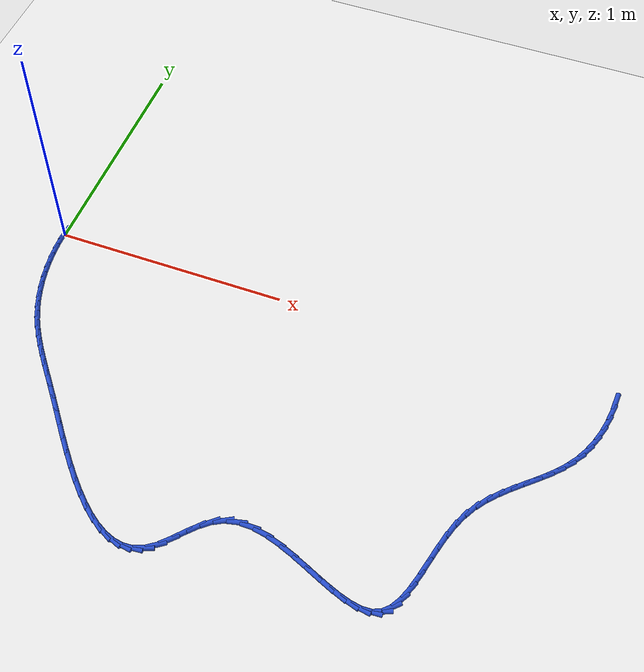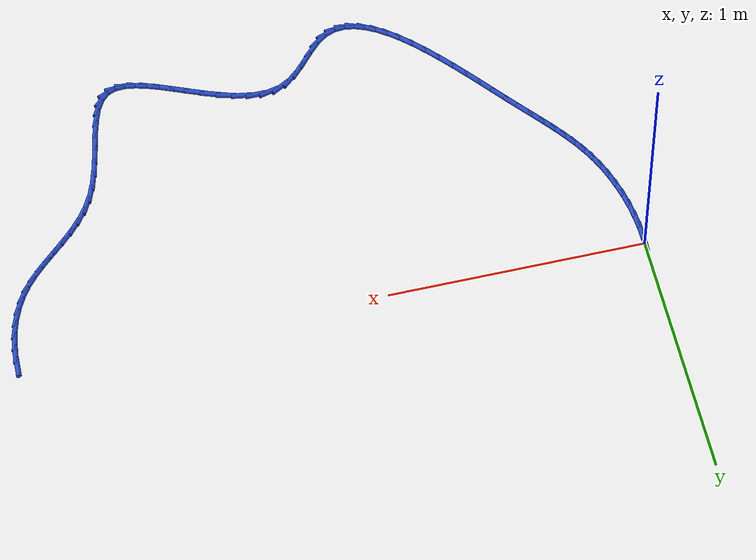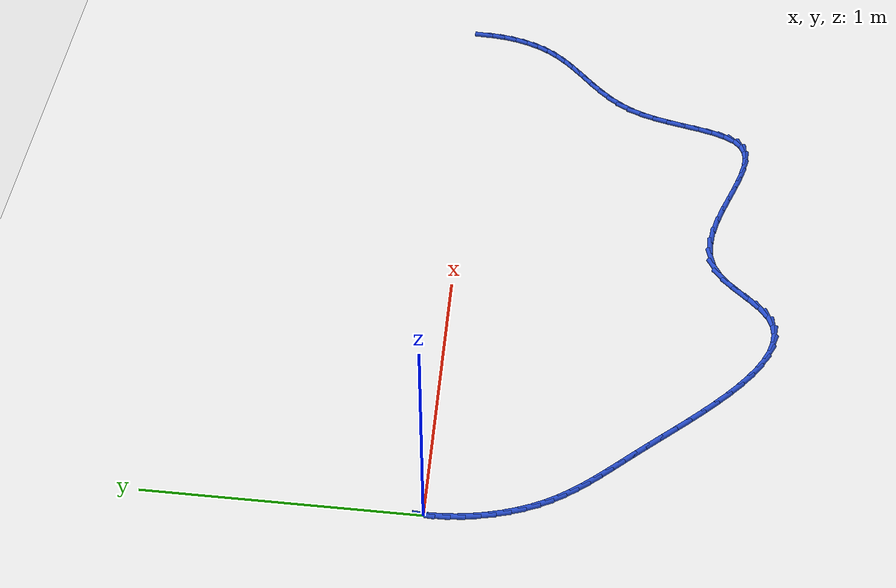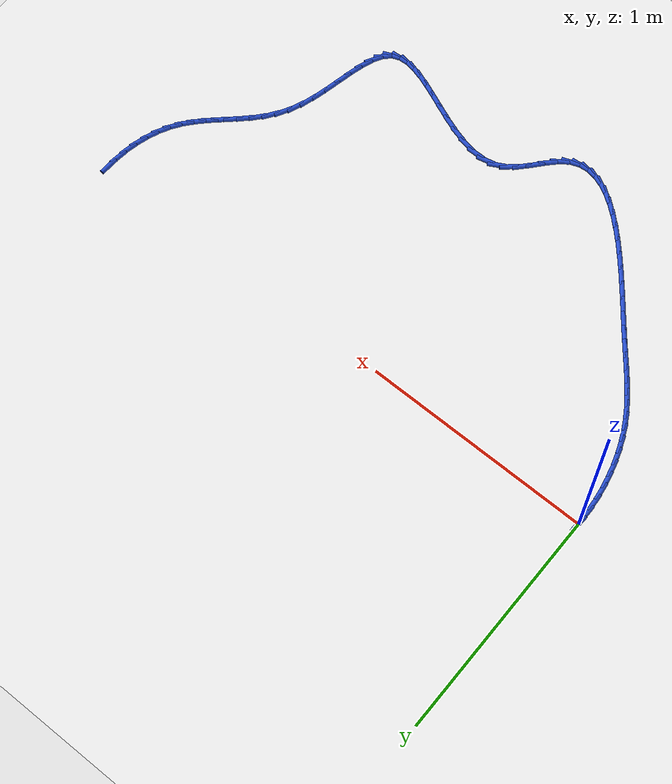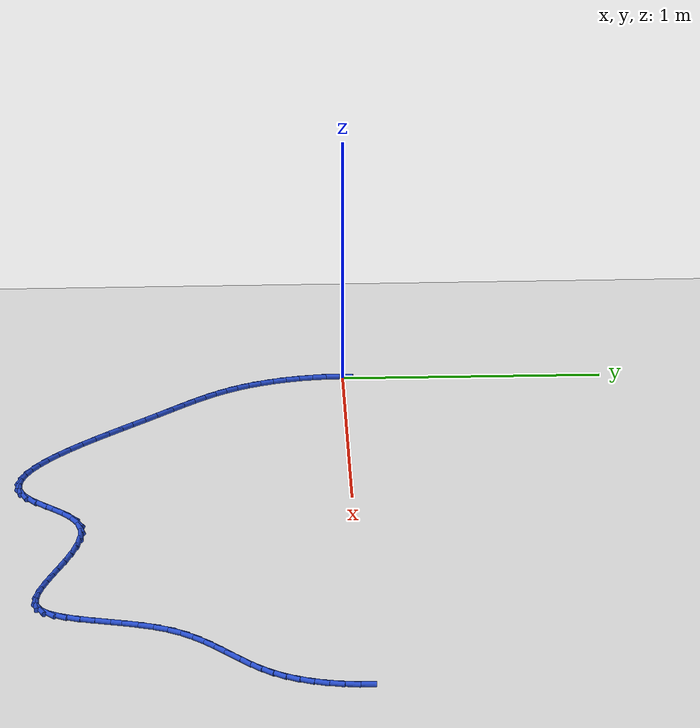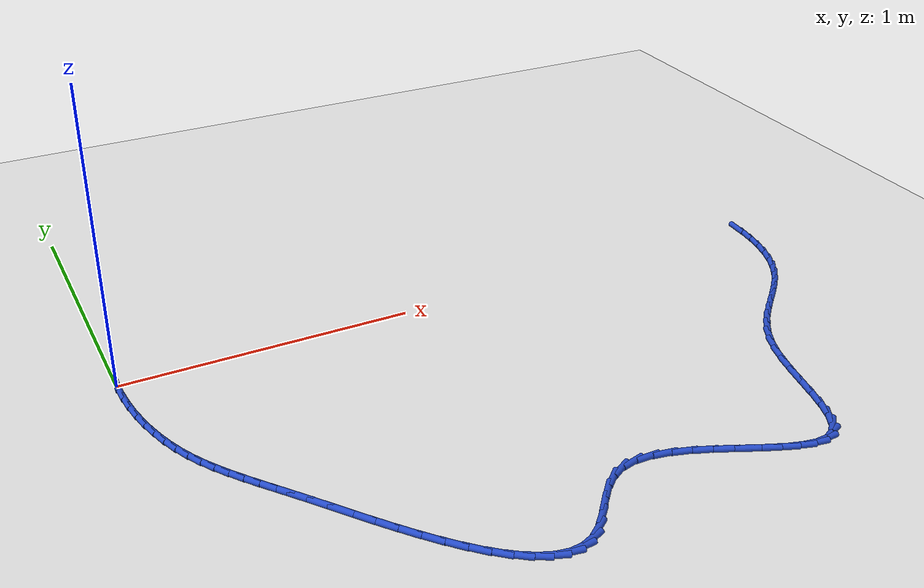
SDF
<sdf version="1.6">
 <world name="default">
  <model name="ground_plane">
   <static>1</static>
   <link name="link">
    <collision name="collision">
     <geometry><plane><normal>0 0 1</normal><size>100 100</size></plane></geometry>
     <surface><friction><ode><mu>100</mu><mu2>50</mu2></ode></friction></surface>
    </collision>
    <visual name="visual">
     <cast_shadows>0</cast_shadows>
     <geometry><plane><normal>0 0 1</normal><size>100 100</size></plane></geometry>
     <material>
      <script><uri>file://media/materials/scripts/gazebo.material</uri><name>Gazebo/WhiteGlow</name></script>
     </material>
    </visual>
   </link>
  </model>
  <model name="line">
   <link name="link_0">
    <pose>-6.938893903907228e-18 1.3877787807814457e-17 0.01 0 1.57 1.52378141872039</pose>
    <collision name="collision">
     <geometry><cylinder><radius>0.01</radius><length>0.08</length></cylinder></geometry>
    </collision>
    <visual name="visual">
     <material>
      <script><name>Gazebo/Blue</name><uri>file://media/materials/scripts/gazebo.material</uri></script>
     </material>
     <geometry><cylinder><radius>0.01</radius><length>0.08</length></cylinder></geometry>
    </visual>
   </link>
   <link name="link_75">
    <pose>2.418953860920743 -0.00753707727334153 0.01 0 1.57 1.5115905988101848</pose>
    <collision name="collision">
     <geometry><cylinder><radius>0.01</radius><length>0.08</length></cylinder></geometry>
    </collision>
    <visual name="visual">
     <material>
      <script><name>Gazebo/Blue</name><uri>file://media/materials/scripts/gazebo.material</uri></script>
     </material>
     <geometry><cylinder><radius>0.01</radius><length>0.08</length></cylinder></geometry>
    </visual>
   </link>
   <link name="link_76">
    <pose>2.4156982120133725 -0.06246156009489186 0.01 0 1.57 1.4341903057175442</pose>
    <collision name="collision">
     <geometry><cylinder><radius>0.01</radius><length>0.08</length></cylinder></geometry>
    </collision>
    <visual name="visual">
     <material>
      <script><name>Gazebo/Blue</name><uri>file://media/materials/scripts/gazebo.material</uri></script>
     </material>
     <geometry><cylinder><radius>0.01</radius><length>0.08</length></cylinder></geometry>
    </visual>
   </link>
   <link name="link_77">
    <pose>2.408296764403238 -0.11630508906727932 0.01 0 1.57 1.352175333449702</pose>
    <collision name="collision">
     <geometry><cylinder><radius>0.01</radius><length>0.08</length></cylinder></geometry>
    </collision>
    <visual name="visual">
     <material>
      <script><name>Gazebo/Blue</name><uri>file://media/materials/scripts/gazebo.material</uri></script>
     </material>
     <geometry><cylinder><radius>0.01</radius><length>0.08</length></cylinder></geometry>
    </visual>
   </link>
   <link name="link_78">
    <pose>2.3966844646303214 -0.16857227343102543 0.01 0 1.57 1.2642471219545484</pose>
    <collision name="collision">
     <geometry><cylinder><radius>0.01</radius><length>0.08</length></cylinder></geometry>
    </collision>
    <visual name="visual">
     <material>
      <script><name>Gazebo/Blue</name><uri>file://media/materials/scripts/gazebo.material</uri></script>
     </material>
     <geometry><cylinder><radius>0.01</radius><length>0.08</length></cylinder></geometry>
    </visual>
   </link>
   <link name="link_79">
    <pose>2.3807962592346055 -0.2187677224266545 0.01 0 1.57 1.1691546269013222</pose>
    <collision name="collision">
     <geometry><cylinder><radius>0.01</radius><length>0.08</length></cylinder></geometry>
    </collision>
    <visual name="visual">
     <material>
      <script><name>Gazebo/Blue</name><uri>file://media/materials/scripts/gazebo.material</uri></script>
     </material>
     <geometry><cylinder><radius>0.01</radius><length>0.08</length></cylinder></geometry>
    </visual>
   </link>
   <link name="link_80">
    <pose>2.360567094756072 -0.26639604529468713 0.01 0 1.57 1.0658197042418793</pose>
    <collision name="collision">
     <geometry><cylinder><radius>0.01</radius><length>0.08</length></cylinder></geometry>
    </collision>
    <visual name="visual">
     <material>
      <script><name>Gazebo/Blue</name><uri>file://media/materials/scripts/gazebo.material</uri></script>
     </material>
     <geometry><cylinder><radius>0.01</radius><length>0.08</length></cylinder></geometry>
    </visual>
   </link>
   <link name="link_81">
    <pose>2.335931917734703 -0.3109618512756475 0.01 0 1.57 0.9553448293580826</pose>
    <collision name="collision">
     <geometry><cylinder><radius>0.01</radius><length>0.08</length></cylinder></geometry>
    </collision>
    <visual name="visual">
     <material>
      <script><name>Gazebo/Blue</name><uri>file://media/materials/scripts/gazebo.material</uri></script>
     </material>
     <geometry><cylinder><radius>0.01</radius><length>0.08</length></cylinder></geometry>
    </visual>
   </link>
   <link name="link_82">
    <pose>2.3068825670304483 -0.3520462956718832 0.01 0 1.57 0.8586632813830273</pose>
    <collision name="collision">
     <geometry><cylinder><radius>0.01</radius><length>0.08</length></cylinder></geometry>
    </collision>
    <visual name="visual">
     <material>
      <script><name>Gazebo/Blue</name><uri>file://media/materials/scripts/gazebo.material</uri></script>
     </material>
     <geometry><cylinder><radius>0.01</radius><length>0.08</length></cylinder></geometry>
    </visual>
   </link>
   <link name="link_83">
    <pose>2.274045916325711 -0.39008494462378923 0.01 0 1.57 0.7904808234332132</pose>
    <collision name="collision">
     <geometry><cylinder><radius>0.01</radius><length>0.08</length></cylinder></geometry>
    </collision>
    <visual name="visual">
     <material>
      <script><name>Gazebo/Blue</name><uri>file://media/materials/scripts/gazebo.material</uri></script>
     </material>
     <geometry><cylinder><radius>0.01</radius><length>0.08</length></cylinder></geometry>
    </visual>
   </link>
   <link name="link_84">
    <pose>2.238446369838608 -0.4260482237568782 0.01 0 1.57 0.7512639387009232</pose>
    <collision name="collision">
     <geometry><cylinder><radius>0.01</radius><length>0.08</length></cylinder></geometry>
    </collision>
    <visual name="visual">
     <material>
      <script><name>Gazebo/Blue</name><uri>file://media/materials/scripts/gazebo.material</uri></script>
     </material>
     <geometry><cylinder><radius>0.01</radius><length>0.08</length></cylinder></geometry>
    </visual>
   </link>
   <link name="link_85">
    <pose>2.2011144314045104 -0.4609147654577803 0.01 0 1.57 0.7402888055148898</pose>
    <collision name="collision">
     <geometry><cylinder><radius>0.01</radius><length>0.08</length></cylinder></geometry>
    </collision>
    <visual name="visual">
     <material>
      <script><name>Gazebo/Blue</name><uri>file://media/materials/scripts/gazebo.material</uri></script>
     </material>
     <geometry><cylinder><radius>0.01</radius><length>0.08</length></cylinder></geometry>
    </visual>
   </link>
   <link name="link_86">
    <pose>2.163080604858791 -0.49566320211312836 0.01 0 1.57 0.7568132975692835</pose>
    <collision name="collision">
     <geometry><cylinder><radius>0.01</radius><length>0.08</length></cylinder></geometry>
    </collision>
    <visual name="visual">
     <material>
      <script><name>Gazebo/Blue</name><uri>file://media/materials/scripts/gazebo.material</uri></script>
     </material>
     <geometry><cylinder><radius>0.01</radius><length>0.08</length></cylinder></geometry>
    </visual>
   </link>
   <link name="link_87">
    <pose>2.125375394036821 -0.5312721661095532 0.01 0 1.57 0.800330913170392</pose>
    <collision name="collision">
     <geometry><cylinder><radius>0.01</radius><length>0.08</length></cylinder></geometry>
    </collision>
    <visual name="visual">
     <material>
      <script><name>Gazebo/Blue</name><uri>file://media/materials/scripts/gazebo.material</uri></script>
     </material>
     <geometry><cylinder><radius>0.01</radius><length>0.08</length></cylinder></geometry>
    </visual>
   </link>
   <link name="link_88">
    <pose>2.0890293027739744 -0.5687202898336855 0.01 0 1.57 0.8702016327924864</pose>
    <collision name="collision">
     <geometry><cylinder><radius>0.01</radius><length>0.08</length></cylinder></geometry>
    </collision>
    <visual name="visual">
     <material>
      <script><name>Gazebo/Blue</name><uri>file://media/materials/scripts/gazebo.material</uri></script>
     </material>
     <geometry><cylinder><radius>0.01</radius><length>0.08</length></cylinder></geometry>
    </visual>
   </link>
   <link name="link_89">
    <pose>2.0550728349056206 -0.6089862056721581 0.01 0 1.57 0.9647663552395166</pose>
    <collision name="collision">
     <geometry><cylinder><radius>0.01</radius><length>0.08</length></cylinder></geometry>
    </collision>
    <visual name="visual">
     <material>
      <script><name>Gazebo/Blue</name><uri>file://media/materials/scripts/gazebo.material</uri></script>
     </material>
     <geometry><cylinder><radius>0.01</radius><length>0.08</length></cylinder></geometry>
    </visual>
   </link>
   <link name="link_90">
    <pose>2.024536494267134 -0.6530485460116019 0.01 0 1.57 1.0802066026189323</pose>
    <collision name="collision">
     <geometry><cylinder><radius>0.01</radius><length>0.08</length></cylinder></geometry>
    </collision>
    <visual name="visual">
     <material>
      <script><name>Gazebo/Blue</name><uri>file://media/materials/scripts/gazebo.material</uri></script>
     </material>
     <geometry><cylinder><radius>0.01</radius><length>0.08</length></cylinder></geometry>
    </visual>
   </link>
   <link name="link_91">
    <pose>1.9984504355643562 -0.7018855010708659 0.01 0 1.57 1.1976037574830725</pose>
    <collision name="collision">
     <geometry><cylinder><radius>0.01</radius><length>0.08</length></cylinder></geometry>
    </collision>
    <visual name="visual">
     <material>
      <script><name>Gazebo/Blue</name><uri>file://media/materials/scripts/gazebo.material</uri></script>
     </material>
     <geometry><cylinder><radius>0.01</radius><length>0.08</length></cylinder></geometry>
    </visual>
   </link>
   <link name="link_92">
    <pose>1.9773310798891257 -0.7558246244607725 0.01 0 1.57 1.2800585541393361</pose>
    <collision name="collision">
     <geometry><cylinder><radius>0.01</radius><length>0.08</length></cylinder></geometry>
    </collision>
    <visual name="visual">
     <material>
      <script><name>Gazebo/Blue</name><uri>file://media/materials/scripts/gazebo.material</uri></script>
     </material>
     <geometry><cylinder><radius>0.01</radius><length>0.08</length></cylinder></geometry>
    </visual>
   </link>
   <link name="link_93">
    <pose>1.9601517196823404 -0.81323911842437 0.01 0 1.57 1.3285328229643947</pose>
    <collision name="collision">
     <geometry><cylinder><radius>0.01</radius><length>0.08</length></cylinder></geometry>
    </collision>
    <visual name="visual">
     <material>
      <script><name>Gazebo/Blue</name><uri>file://media/materials/scripts/gazebo.material</uri></script>
     </material>
     <geometry><cylinder><radius>0.01</radius><length>0.08</length></cylinder></geometry>
    </visual>
   </link>
   <link name="link_94">
    <pose>1.9455971073815825 -0.8721367532300064 0.01 0 1.57 1.347727097033639</pose>
    <collision name="collision">
     <geometry><cylinder><radius>0.01</radius><length>0.08</length></cylinder></geometry>
    </collision>
    <visual name="visual">
     <material>
      <script><name>Gazebo/Blue</name><uri>file://media/materials/scripts/gazebo.material</uri></script>
     </material>
     <geometry><cylinder><radius>0.01</radius><length>0.08</length></cylinder></geometry>
    </visual>
   </link>
   <link name="link_95">
    <pose>1.9323519954244348 -0.9305252991460261 0.01 0 1.57 1.337995243318835</pose>
    <collision name="collision">
     <geometry><cylinder><radius>0.01</radius><length>0.08</length></cylinder></geometry>
    </collision>
    <visual name="visual">
     <material>
      <script><name>Gazebo/Blue</name><uri>file://media/materials/scripts/gazebo.material</uri></script>
     </material>
     <geometry><cylinder><radius>0.01</radius><length>0.08</length></cylinder></geometry>
    </visual>
   </link>
   <link name="link_96">
    <pose>1.9191011362484791 -0.9864125264407737 0.01 0 1.57 1.294513587840884</pose>
    <collision name="collision">
     <geometry><cylinder><radius>0.01</radius><length>0.08</length></cylinder></geometry>
    </collision>
    <visual name="visual">
     <material>
      <script><name>Gazebo/Blue</name><uri>file://media/materials/scripts/gazebo.material</uri></script>
     </material>
     <geometry><cylinder><radius>0.01</radius><length>0.08</length></cylinder></geometry>
    </visual>
   </link>
   <link name="link_97">
    <pose>1.904529282291297 -1.037806205382596 0.01 0 1.57 1.2048679366167394</pose>
    <collision name="collision">
     <geometry><cylinder><radius>0.01</radius><length>0.08</length></cylinder></geometry>
    </collision>
    <visual name="visual">
     <material>
      <script><name>Gazebo/Blue</name><uri>file://media/materials/scripts/gazebo.material</uri></script>
     </material>
     <geometry><cylinder><radius>0.01</radius><length>0.08</length></cylinder></geometry>
    </visual>
   </link>
   <link name="link_98">
    <pose>1.8873211859904708 -1.0827141062398373 0.01 0 1.57 1.0445914507859448</pose>
    <collision name="collision">
     <geometry><cylinder><radius>0.01</radius><length>0.08</length></cylinder></geometry>
    </collision>
    <visual name="visual">
     <material>
      <script><name>Gazebo/Blue</name><uri>file://media/materials/scripts/gazebo.material</uri></script>
     </material>
     <geometry><cylinder><radius>0.01</radius><length>0.08</length></cylinder></geometry>
    </visual>
   </link>
   <link name="link_99">
    <pose>1.8661615997835836 -1.1191439992808452 0.01 0 1.57 0.7764901340782944</pose>
    <collision name="collision">
     <geometry><cylinder><radius>0.01</radius><length>0.08</length></cylinder></geometry>
    </collision>
    <visual name="visual">
     <material>
      <script><name>Gazebo/Blue</name><uri>file://media/materials/scripts/gazebo.material</uri></script>
     </material>
     <geometry><cylinder><radius>0.01</radius><length>0.08</length></cylinder></geometry>
    </visual>
   </link>
   <link name="link_100">
    <pose>1.8397352761082169 -1.1451036547739633 0.01 0 1.57 0.3969226362818346</pose>
    <collision name="collision">
     <geometry><cylinder><radius>0.01</radius><length>0.08</length></cylinder></geometry>
    </collision>
    <visual name="visual">
     <material>
      <script><name>Gazebo/Blue</name><uri>file://media/materials/scripts/gazebo.material</uri></script>
     </material>
     <geometry><cylinder><radius>0.01</radius><length>0.08</length></cylinder></geometry>
    </visual>
   </link>
   <link name="link_101">
    <pose>1.806878154313331 -1.1588763898185046 0.01 0 1.57 0.059535391730029454</pose>
    <collision name="collision">
     <geometry><cylinder><radius>0.01</radius><length>0.08</length></cylinder></geometry>
    </collision>
    <visual name="visual">
     <material>
      <script><name>Gazebo/Blue</name><uri>file://media/materials/scripts/gazebo.material</uri></script>
     </material>
     <geometry><cylinder><radius>0.01</radius><length>0.08</length></cylinder></geometry>
    </visual>
   </link>
   <link name="link_102">
    <pose>1.7677767697829068 -1.1612070603730253 0.01 0 1.57 -0.15777746242368515</pose>
    <collision name="collision">
     <geometry><cylinder><radius>0.01</radius><length>0.08</length></cylinder></geometry>
    </collision>
    <visual name="visual">
     <material>
      <script><name>Gazebo/Blue</name><uri>file://media/materials/scripts/gazebo.material</uri></script>
     </material>
     <geometry><cylinder><radius>0.01</radius><length>0.08</length></cylinder></geometry>
    </visual>
   </link>
   <link name="link_103">
    <pose>1.7233280636499664 -1.1541352776831946 0.01 0 1.57 -0.2868580666199847</pose>
    <collision name="collision">
     <geometry><cylinder><radius>0.01</radius><length>0.08</length></cylinder></geometry>
    </collision>
    <visual name="visual">
     <material>
      <script><name>Gazebo/Blue</name><uri>file://media/materials/scripts/gazebo.material</uri></script>
     </material>
     <geometry><cylinder><radius>0.01</radius><length>0.08</length></cylinder></geometry>
    </visual>
   </link>
   <link name="link_104">
    <pose>1.674435310632058 -1.1397121963163102 0.01 0 1.57 -0.35978443895311546</pose>
    <collision name="collision">
     <geometry><cylinder><radius>0.01</radius><length>0.08</length></cylinder></geometry>
    </collision>
    <visual name="visual">
     <material>
      <script><name>Gazebo/Blue</name><uri>file://media/materials/scripts/gazebo.material</uri></script>
     </material>
     <geometry><cylinder><radius>0.01</radius><length>0.08</length></cylinder></geometry>
    </visual>
   </link>
   <link name="link_105">
    <pose>1.6220017854467241 -1.1199889708396682 0.01 0 1.57 -0.39519264306884133</pose>
    <collision name="collision">
     <geometry><cylinder><radius>0.01</radius><length>0.08</length></cylinder></geometry>
    </collision>
    <visual name="visual">
     <material>
      <script><name>Gazebo/Blue</name><uri>file://media/materials/scripts/gazebo.material</uri></script>
     </material>
     <geometry><cylinder><radius>0.01</radius><length>0.08</length></cylinder></geometry>
    </visual>
   </link>
   <link name="link_106">
    <pose>1.5669307628115134 -1.0970167558205677 0.01 0 1.57 -0.40228540208352276</pose>
    <collision name="collision">
     <geometry><cylinder><radius>0.01</radius><length>0.08</length></cylinder></geometry>
    </collision>
    <visual name="visual">
     <material>
      <script><name>Gazebo/Blue</name><uri>file://media/materials/scripts/gazebo.material</uri></script>
     </material>
     <geometry><cylinder><radius>0.01</radius><length>0.08</length></cylinder></geometry>
    </visual>
   </link>
   <link name="link_107">
    <pose>1.5101255174439698 -1.072846705826305 0.01 0 1.57 -0.3844227511792136</pose>
    <collision name="collision">
     <geometry><cylinder><radius>0.01</radius><length>0.08</length></cylinder></geometry>
    </collision>
    <visual name="visual">
     <material>
      <script><name>Gazebo/Blue</name><uri>file://media/materials/scripts/gazebo.material</uri></script>
     </material>
     <geometry><cylinder><radius>0.01</radius><length>0.08</length></cylinder></geometry>
    </visual>
   </link>
   <link name="link_108">
    <pose>1.45248932406164 -1.0495299754241778 0.01 0 1.57 -0.3407686066290357</pose>
    <collision name="collision">
     <geometry><cylinder><radius>0.01</radius><length>0.08</length></cylinder></geometry>
    </collision>
    <visual name="visual">
     <material>
      <script><name>Gazebo/Blue</name><uri>file://media/materials/scripts/gazebo.material</uri></script>
     </material>
     <geometry><cylinder><radius>0.01</radius><length>0.08</length></cylinder></geometry>
    </visual>
   </link>
   <link name="link_109">
    <pose>1.394925457382071 -1.0291177191814844 0.01 0 1.57 -0.26663795097515114</pose>
    <collision name="collision">
     <geometry><cylinder><radius>0.01</radius><length>0.08</length></cylinder></geometry>
    </collision>
    <visual name="visual">
     <material>
      <script><name>Gazebo/Blue</name><uri>file://media/materials/scripts/gazebo.material</uri></script>
     </material>
     <geometry><cylinder><radius>0.01</radius><length>0.08</length></cylinder></geometry>
    </visual>
   </link>
   <link name="link_110">
    <pose>1.3383371921228067 -1.013661091665521 0.01 0 1.57 -0.15323878557653337</pose>
    <collision name="collision">
     <geometry><cylinder><radius>0.01</radius><length>0.08</length></cylinder></geometry>
    </collision>
    <visual name="visual">
     <material>
      <script><name>Gazebo/Blue</name><uri>file://media/materials/scripts/gazebo.material</uri></script>
     </material>
     <geometry><cylinder><radius>0.01</radius><length>0.08</length></cylinder></geometry>
    </visual>
   </link>
   <link name="link_111">
    <pose>1.2836278030013941 -1.0052112474435861 0.01 0 1.57 0.011709959259726812</pose>
    <collision name="collision">
     <geometry><cylinder><radius>0.01</radius><length>0.08</length></cylinder></geometry>
    </collision>
    <visual name="visual">
     <material>
      <script><name>Gazebo/Blue</name><uri>file://media/materials/scripts/gazebo.material</uri></script>
     </material>
     <geometry><cylinder><radius>0.01</radius><length>0.08</length></cylinder></geometry>
    </visual>
   </link>
   <link name="link_112">
    <pose>1.2317005647353796 -1.0058193410829763 0.01 0 1.57 0.2382705428289145</pose>
    <collision name="collision">
     <geometry><cylinder><radius>0.01</radius><length>0.08</length></cylinder></geometry>
    </collision>
    <visual name="visual">
     <material>
      <script><name>Gazebo/Blue</name><uri>file://media/materials/scripts/gazebo.material</uri></script>
     </material>
     <geometry><cylinder><radius>0.01</radius><length>0.08</length></cylinder></geometry>
    </visual>
   </link>
   <link name="link_113">
    <pose>1.1834587520423077 -1.01753652715099 0.01 0 1.57 0.5100358949608602</pose>
    <collision name="collision">
     <geometry><cylinder><radius>0.01</radius><length>0.08</length></cylinder></geometry>
    </collision>
    <visual name="visual">
     <material>
      <script><name>Gazebo/Blue</name><uri>file://media/materials/scripts/gazebo.material</uri></script>
     </material>
     <geometry><cylinder><radius>0.01</radius><length>0.08</length></cylinder></geometry>
    </visual>
   </link>
   <link name="link_114">
    <pose>1.1396852253867005 -1.0420236937065757 0.01 0 1.57 0.7183202570744234</pose>
    <collision name="collision">
     <geometry><cylinder><radius>0.01</radius><length>0.08</length></cylinder></geometry>
    </collision>
    <visual name="visual">
     <material>
      <script><name>Gazebo/Blue</name><uri>file://media/materials/scripts/gazebo.material</uri></script>
     </material>
     <geometry><cylinder><radius>0.01</radius><length>0.08</length></cylinder></geometry>
    </visual>
   </link>
   <link name="link_115">
    <pose>1.0998881336168431 -1.0768103470235584 0.01 0 1.57 0.824903342284498</pose>
    <collision name="collision">
     <geometry><cylinder><radius>0.01</radius><length>0.08</length></cylinder></geometry>
    </collision>
    <visual name="visual">
     <material>
      <script><name>Gazebo/Blue</name><uri>file://media/materials/scripts/gazebo.material</uri></script>
     </material>
     <geometry><cylinder><radius>0.01</radius><length>0.08</length></cylinder></geometry>
    </visual>
   </link>
   <link name="link_116">
    <pose>1.0628089838943175 -1.1169412827480143 0.01 0 1.57 0.8491066712413429</pose>
    <collision name="collision">
     <geometry><cylinder><radius>0.01</radius><length>0.08</length></cylinder></geometry>
    </collision>
    <visual name="visual">
     <material>
      <script><name>Gazebo/Blue</name><uri>file://media/materials/scripts/gazebo.material</uri></script>
     </material>
     <geometry><cylinder><radius>0.01</radius><length>0.08</length></cylinder></geometry>
    </visual>
   </link>
   <link name="link_117">
    <pose>1.0271787925030522 -1.1574272952505171 0.01 0 1.57 0.7910314143656614</pose>
    <collision name="collision">
     <geometry><cylinder><radius>0.01</radius><length>0.08</length></cylinder></geometry>
    </collision>
    <visual name="visual">
     <material>
      <script><name>Gazebo/Blue</name><uri>file://media/materials/scripts/gazebo.material</uri></script>
     </material>
     <geometry><cylinder><radius>0.01</radius><length>0.08</length></cylinder></geometry>
    </visual>
   </link>
   <link name="link_118">
    <pose>0.9917285757269726 -1.1932791789016404 0.01 0 1.57 0.6242128585271272</pose>
    <collision name="collision">
     <geometry><cylinder><radius>0.01</radius><length>0.08</length></cylinder></geometry>
    </collision>
    <visual name="visual">
     <material>
      <script><name>Gazebo/Blue</name><uri>file://media/materials/scripts/gazebo.material</uri></script>
     </material>
     <geometry><cylinder><radius>0.01</radius><length>0.08</length></cylinder></geometry>
    </visual>
   </link>
   <link name="link_119">
    <pose>0.9552083839273232 -1.2195842435826596 0.01 0 1.57 0.361260841029121</pose>
    <collision name="collision">
     <geometry><cylinder><radius>0.01</radius><length>0.08</length></cylinder></geometry>
    </collision>
    <visual name="visual">
     <material>
      <script><name>Gazebo/Blue</name><uri>file://media/materials/scripts/gazebo.material</uri></script>
     </material>
     <geometry><cylinder><radius>0.01</radius><length>0.08</length></cylinder></geometry>
    </visual>
   </link>
   <link name="link_120">
    <pose>0.917011755879748 -1.2340165725625518 0.01 0 1.57 0.08507916280692332</pose>
    <collision name="collision">
     <geometry><cylinder><radius>0.01</radius><length>0.08</length></cylinder></geometry>
    </collision>
    <visual name="visual">
     <material>
      <script><name>Gazebo/Blue</name><uri>file://media/materials/scripts/gazebo.material</uri></script>
     </material>
     <geometry><cylinder><radius>0.01</radius><length>0.08</length></cylinder></geometry>
    </visual>
   </link>
   <link name="link_121">
    <pose>0.8773162641920789 -1.2374020041485552 0.01 0 1.57 -0.1607879986346876</pose>
    <collision name="collision">
     <geometry><cylinder><radius>0.01</radius><length>0.08</length></cylinder></geometry>
    </collision>
    <visual name="visual">
     <material>
      <script><name>Gazebo/Blue</name><uri>file://media/materials/scripts/gazebo.material</uri></script>
     </material>
     <geometry><cylinder><radius>0.01</radius><length>0.08</length></cylinder></geometry>
    </visual>
   </link>
   <link name="link_122">
    <pose>0.8363469689538109 -1.2307572726315241 0.01 0 1.57 -0.35671169438864</pose>
    <collision name="collision">
     <geometry><cylinder><radius>0.01</radius><length>0.08</length></cylinder></geometry>
    </collision>
    <visual name="visual">
     <material>
      <script><name>Gazebo/Blue</name><uri>file://media/materials/scripts/gazebo.material</uri></script>
     </material>
     <geometry><cylinder><radius>0.01</radius><length>0.08</length></cylinder></geometry>
    </visual>
   </link>
   <link name="link_123">
    <pose>0.7943289302544362 -1.2150991123023145 0.01 0 1.57 -0.5044887707262822</pose>
    <collision name="collision">
     <geometry><cylinder><radius>0.01</radius><length>0.08</length></cylinder></geometry>
    </collision>
    <visual name="visual">
     <material>
      <script><name>Gazebo/Blue</name><uri>file://media/materials/scripts/gazebo.material</uri></script>
     </material>
     <geometry><cylinder><radius>0.01</radius><length>0.08</length></cylinder></geometry>
    </visual>
   </link>
   <link name="link_124">
    <pose>0.7514872081834497 -1.19144425745178 0.01 0 1.57 -0.6142178870977079</pose>
    <collision name="collision">
     <geometry><cylinder><radius>0.01</radius><length>0.08</length></cylinder></geometry>
    </collision>
    <visual name="visual">
     <material>
      <script><name>Gazebo/Blue</name><uri>file://media/materials/scripts/gazebo.material</uri></script>
     </material>
     <geometry><cylinder><radius>0.01</radius><length>0.08</length></cylinder></geometry>
    </visual>
   </link>
   <link name="link_125">
    <pose>0.7080468628303462 -1.1608094423707778 0.01 0 1.57 -0.6959016173217958</pose>
    <collision name="collision">
     <geometry><cylinder><radius>0.01</radius><length>0.08</length></cylinder></geometry>
    </collision>
    <visual name="visual">
     <material>
      <script><name>Gazebo/Blue</name><uri>file://media/materials/scripts/gazebo.material</uri></script>
     </material>
     <geometry><cylinder><radius>0.01</radius><length>0.08</length></cylinder></geometry>
    </visual>
   </link>
   <link name="link_126">
    <pose>0.664232954284618 -1.1242114013501614 0.01 0 1.57 -0.7571287067824262</pose>
    <collision name="collision">
     <geometry><cylinder><radius>0.01</radius><length>0.08</length></cylinder></geometry>
    </collision>
    <visual name="visual">
     <material>
      <script><name>Gazebo/Blue</name><uri>file://media/materials/scripts/gazebo.material</uri></script>
     </material>
     <geometry><cylinder><radius>0.01</radius><length>0.08</length></cylinder></geometry>
    </visual>
   </link>
   <link name="link_127">
    <pose>0.6202705426357605 -1.082666868680786 0.01 0 1.57 -0.803171949469264</pose>
    <collision name="collision">
     <geometry><cylinder><radius>0.01</radius><length>0.08</length></cylinder></geometry>
    </collision>
    <visual name="visual">
     <material>
      <script><name>Gazebo/Blue</name><uri>file://media/materials/scripts/gazebo.material</uri></script>
     </material>
     <geometry><cylinder><radius>0.01</radius><length>0.08</length></cylinder></geometry>
    </visual>
   </link>
   <link name="link_128">
    <pose>0.5763846879732666 -1.037192578653507 0.01 0 1.57 -0.837574256315173</pose>
    <collision name="collision">
     <geometry><cylinder><radius>0.01</radius><length>0.08</length></cylinder></geometry>
    </collision>
    <visual name="visual">
     <material>
      <script><name>Gazebo/Blue</name><uri>file://media/materials/scripts/gazebo.material</uri></script>
     </material>
     <geometry><cylinder><radius>0.01</radius><length>0.08</length></cylinder></geometry>
    </visual>
   </link>
   <link name="link_129">
    <pose>0.5328004503866306 -0.9888052655591789 0.01 0 1.57 -0.8626594423240556</pose>
    <collision name="collision">
     <geometry><cylinder><radius>0.01</radius><length>0.08</length></cylinder></geometry>
    </collision>
    <visual name="visual">
     <material>
      <script><name>Gazebo/Blue</name><uri>file://media/materials/scripts/gazebo.material</uri></script>
     </material>
     <geometry><cylinder><radius>0.01</radius><length>0.08</length></cylinder></geometry>
    </visual>
   </link>
   <link name="link_130">
    <pose>0.4897428899653475 -0.9385216636886586 0.01 0 1.57 -0.879878305904035</pose>
    <collision name="collision">
     <geometry><cylinder><radius>0.01</radius><length>0.08</length></cylinder></geometry>
    </collision>
    <visual name="visual">
     <material>
      <script><name>Gazebo/Blue</name><uri>file://media/materials/scripts/gazebo.material</uri></script>
     </material>
     <geometry><cylinder><radius>0.01</radius><length>0.08</length></cylinder></geometry>
    </visual>
   </link>
   <link name="link_131">
    <pose>0.44743706679890943 -0.8873585073327988 0.01 0 1.57 -0.8900113455046251</pose>
    <collision name="collision">
     <geometry><cylinder><radius>0.01</radius><length>0.08</length></cylinder></geometry>
    </collision>
    <visual name="visual">
     <material>
      <script><name>Gazebo/Blue</name><uri>file://media/materials/scripts/gazebo.material</uri></script>
     </material>
     <geometry><cylinder><radius>0.01</radius><length>0.08</length></cylinder></geometry>
    </visual>
   </link>
   <link name="link_132">
    <pose>0.40610804097681225 -0.8363325307824565 0.01 0 1.57 -0.8932554920048977</pose>
    <collision name="collision">
     <geometry><cylinder><radius>0.01</radius><length>0.08</length></cylinder></geometry>
    </collision>
    <visual name="visual">
     <material>
      <script><name>Gazebo/Blue</name><uri>file://media/materials/scripts/gazebo.material</uri></script>
     </material>
     <geometry><cylinder><radius>0.01</radius><length>0.08</length></cylinder></geometry>
    </visual>
   </link>
   <link name="link_133">
    <pose>0.36598087258854833 -0.7864604683284853 0.01 0 1.57 -0.889204112259362</pose>
    <collision name="collision">
     <geometry><cylinder><radius>0.01</radius><length>0.08</length></cylinder></geometry>
    </collision>
    <visual name="visual">
     <material>
      <script><name>Gazebo/Blue</name><uri>file://media/materials/scripts/gazebo.material</uri></script>
     </material>
     <geometry><cylinder><radius>0.01</radius><length>0.08</length></cylinder></geometry>
    </visual>
   </link>
   <link name="link_134">
    <pose>0.3272806048498461 -0.7387588115690034 0.01 0 1.57 -0.8804761933809716</pose>
    <collision name="collision">
     <geometry><cylinder><radius>0.01</radius><length>0.08</length></cylinder></geometry>
    </collision>
    <visual name="visual">
     <material>
      <script><name>Gazebo/Blue</name><uri>file://media/materials/scripts/gazebo.material</uri></script>
     </material>
     <geometry><cylinder><radius>0.01</radius><length>0.08</length></cylinder></geometry>
    </visual>
   </link>
   <link name="link_135">
    <pose>0.29020610793493407 -0.6938676093463884 0.01 0 1.57 -0.878173826965856</pose>
    <collision name="collision">
     <geometry><cylinder><radius>0.01</radius><length>0.08</length></cylinder></geometry>
    </collision>
    <visual name="visual">
     <material>
      <script><name>Gazebo/Blue</name><uri>file://media/materials/scripts/gazebo.material</uri></script>
     </material>
     <geometry><cylinder><radius>0.01</radius><length>0.08</length></cylinder></geometry>
    </visual>
   </link>
   <link name="link_136">
    <pose>0.254877211558178 -0.6512900839509583 0.01 0 1.57 -0.8857421178017577</pose>
    <collision name="collision">
     <geometry><cylinder><radius>0.01</radius><length>0.08</length></cylinder></geometry>
    </collision>
    <visual name="visual">
     <material>
      <script><name>Gazebo/Blue</name><uri>file://media/materials/scripts/gazebo.material</uri></script>
     </material>
     <geometry><cylinder><radius>0.01</radius><length>0.08</length></cylinder></geometry>
    </visual>
   </link>
   <link name="link_137">
    <pose>0.22139888347388995 -0.6103157004297577 0.01 0 1.57 -0.904364981324218</pose>
    <collision name="collision">
     <geometry><cylinder><radius>0.01</radius><length>0.08</length></cylinder></geometry>
    </collision>
    <visual name="visual">
     <material>
      <script><name>Gazebo/Blue</name><uri>file://media/materials/scripts/gazebo.material</uri></script>
     </material>
     <geometry><cylinder><radius>0.01</radius><length>0.08</length></cylinder></geometry>
    </visual>
   </link>
   <link name="link_138">
    <pose>0.1898760914363814 -0.5702339238298291 0.01 0 1.57 -0.9347550302329813</pose>
    <collision name="collision">
     <geometry><cylinder><radius>0.01</radius><length>0.08</length></cylinder></geometry>
    </collision>
    <visual name="visual">
     <material>
      <script><name>Gazebo/Blue</name><uri>file://media/materials/scripts/gazebo.material</uri></script>
     </material>
     <geometry><cylinder><radius>0.01</radius><length>0.08</length></cylinder></geometry>
    </visual>
   </link>
   <link name="link_139">
    <pose>0.16041380319996265 -0.5303342191982147 0.01 0 1.57 -0.976914067502627</pose>
    <collision name="collision">
     <geometry><cylinder><radius>0.01</radius><length>0.08</length></cylinder></geometry>
    </collision>
    <visual name="visual">
     <material>
      <script><name>Gazebo/Blue</name><uri>file://media/materials/scripts/gazebo.material</uri></script>
     </material>
     <geometry><cylinder><radius>0.01</radius><length>0.08</length></cylinder></geometry>
    </visual>
   </link>
   <link name="link_140">
    <pose>0.13311698651894582 -0.48990605158195827 0.01 0 1.57 -1.0299167584114428</pose>
    <collision name="collision">
     <geometry><cylinder><radius>0.01</radius><length>0.08</length></cylinder></geometry>
    </collision>
    <visual name="visual">
     <material>
      <script><name>Gazebo/Blue</name><uri>file://media/materials/scripts/gazebo.material</uri></script>
     </material>
     <geometry><cylinder><radius>0.01</radius><length>0.08</length></cylinder></geometry>
    </visual>
   </link>
   <link name="link_141">
    <pose>0.1080906091476412 -0.44823888602810125 0.01 0 1.57 -1.091813217113847</pose>
    <collision name="collision">
     <geometry><cylinder><radius>0.01</radius><length>0.08</length></cylinder></geometry>
    </collision>
    <visual name="visual">
     <material>
      <script><name>Gazebo/Blue</name><uri>file://media/materials/scripts/gazebo.material</uri></script>
     </material>
     <geometry><cylinder><radius>0.01</radius><length>0.08</length></cylinder></geometry>
    </visual>
   </link>
   <link name="link_142">
    <pose>0.08543963836663399 -0.40462220775663077 0.01 0 1.57 -1.1579148579680583</pose>
    <collision name="collision">
     <geometry><cylinder><radius>0.01</radius><length>0.08</length></cylinder></geometry>
    </collision>
    <visual name="visual">
     <material>
      <script><name>Gazebo/Blue</name><uri>file://media/materials/scripts/gazebo.material</uri></script>
     </material>
     <geometry><cylinder><radius>0.01</radius><length>0.08</length></cylinder></geometry>
    </visual>
   </link>
   <link name="link_143">
    <pose>0.0652638803700863 -0.3585652792544074 0.01 0 1.57 -1.2205168750676192</pose>
    <collision name="collision">
     <geometry><cylinder><radius>0.01</radius><length>0.08</length></cylinder></geometry>
    </collision>
    <visual name="visual">
     <material>
      <script><name>Gazebo/Blue</name><uri>file://media/materials/scripts/gazebo.material</uri></script>
     </material>
     <geometry><cylinder><radius>0.01</radius><length>0.08</length></cylinder></geometry>
    </visual>
   </link>
   <link name="link_144">
    <pose>0.04764521845395972 -0.31034058324101005 0.01 0 1.57 -1.279390110845804</pose>
    <collision name="collision">
     <geometry><cylinder><radius>0.01</radius><length>0.08</length></cylinder></geometry>
    </collision>
    <visual name="visual">
     <material>
      <script><name>Gazebo/Blue</name><uri>file://media/materials/scripts/gazebo.material</uri></script>
     </material>
     <geometry><cylinder><radius>0.01</radius><length>0.08</length></cylinder></geometry>
    </visual>
   </link>
   <link name="link_145">
    <pose>0.032661647892432484 -0.2603861681195479 0.01 0 1.57 -1.3357786783229797</pose>
    <collision name="collision">
     <geometry><cylinder><radius>0.01</radius><length>0.08</length></cylinder></geometry>
    </collision>
    <visual name="visual">
     <material>
      <script><name>Gazebo/Blue</name><uri>file://media/materials/scripts/gazebo.material</uri></script>
     </material>
     <geometry><cylinder><radius>0.01</radius><length>0.08</length></cylinder></geometry>
    </visual>
   </link>
   <link name="link_146">
    <pose>0.020391163959681758 -0.2091400822931261 0.01 0 1.57 -1.390817828485989</pose>
    <collision name="collision">
     <geometry><cylinder><radius>0.01</radius><length>0.08</length></cylinder></geometry>
    </collision>
    <visual name="visual">
     <material>
      <script><name>Gazebo/Blue</name><uri>file://media/materials/scripts/gazebo.material</uri></script>
     </material>
     <geometry><cylinder><radius>0.01</radius><length>0.08</length></cylinder></geometry>
    </visual>
   </link>
   <link name="link_147">
    <pose>0.01091176192988547 -0.15704037416485303 0.01 0 1.57 -1.4455805667011052</pose>
    <collision name="collision">
     <geometry><cylinder><radius>0.01</radius><length>0.08</length></cylinder></geometry>
    </collision>
    <visual name="visual">
     <material>
      <script><name>Gazebo/Blue</name><uri>file://media/materials/scripts/gazebo.material</uri></script>
     </material>
     <geometry><cylinder><radius>0.01</radius><length>0.08</length></cylinder></geometry>
    </visual>
   </link>
   <link name="link_148">
    <pose>0.004301437077221394 -0.1045250921378367 0.01 0 1.57 -1.5011234870197654</pose>
    <collision name="collision">
     <geometry><cylinder><radius>0.01</radius><length>0.08</length></cylinder></geometry>
    </collision>
    <visual name="visual">
     <material>
      <script><name>Gazebo/Blue</name><uri>file://media/materials/scripts/gazebo.material</uri></script>
     </material>
     <geometry><cylinder><radius>0.01</radius><length>0.08</length></cylinder></geometry>
    </visual>
   </link>
   <link name="link_149">
    <pose>0.0006381846758669648 -0.052032284615182584 0.01 0 1.57 -1.5585317744722962</pose>
    <collision name="collision">
     <geometry><cylinder><radius>0.01</radius><length>0.08</length></cylinder></geometry>
    </collision>
    <visual name="visual">
     <material>
      <script><name>Gazebo/Blue</name><uri>file://media/materials/scripts/gazebo.material</uri></script>
     </material>
     <geometry><cylinder><radius>0.01</radius><length>0.08</length></cylinder></geometry>
    </visual>
   </link>
  </model>
 </world>
</sdf>
